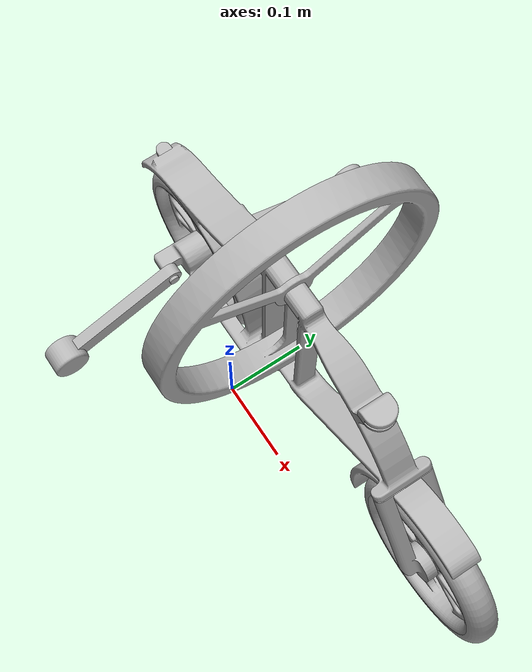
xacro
<?xml version="1.0" ?>
<robot name="inter_iit_sbb" xmlns:xacro="http://www.ros.org/wiki/xacro">

<xacro:include filename="$(find inter_iit_sbb_description)/xacro/materials.xacro" />
<xacro:include filename="$(find inter_iit_sbb_description)/urdf/inter_iit_sbb.trans" />
<xacro:include filename="$(find inter_iit_sbb_description)/urdf/inter_iit_sbb.gazebo" />

<link name="base_link">
  <inertial>
    <origin rpy="0 0 0" xyz="-0.06301495463172813 0.09167858470193327 0.04065767466634844"/>
    <mass value="2.5119624293725873"/>
    <inertia ixx="0.017685" ixy="-6.6e-05" ixz="-0.009075" iyy="0.062932" iyz="-3.2e-05" izz="0.047251"/>
  </inertial>
  <visual>
    <origin rpy="0 0 0" xyz="0 0 0"/>
    <geometry>
      <mesh filename="package://inter_iit_sbb_description/meshes/base_link.stl" scale="0.001 0.001 0.001"/>
    </geometry>
    <material name="silver"/>
  </visual>
  <collision>
    <origin rpy="0 0 0" xyz="0 0 0"/>
    <geometry>
      <mesh filename="package://inter_iit_sbb_description/meshes/base_link.stl" scale="0.001 0.001 0.001"/>
    </geometry>
  </collision>
</link>

<link name="Lidar_f_1">
  <inertial>
    <origin rpy="0 0 0" xyz="0.006298902233657533 -4.9679982069394946e-05 0.008645447646453502"/>
    <mass value="0.0292738467931227"/>
    <inertia ixx="4e-06" ixy="-0.0" ixz="-0.0" iyy="3e-06" iyz="-0.0" izz="6e-06"/>
  </inertial>
  <visual>
    <origin rpy="0 0 0" xyz="-0.151085 -0.09175 -0.158938"/>
    <geometry>
      <mesh filename="package://inter_iit_sbb_description/meshes/Lidar_f_1.stl" scale="0.001 0.001 0.001"/>
    </geometry>
    <material name="silver"/>
  </visual>
  <collision>
    <origin rpy="0 0 0" xyz="-0.151085 -0.09175 -0.158938"/>
    <geometry>
      <mesh filename="package://inter_iit_sbb_description/meshes/Lidar_f_1.stl" scale="0.001 0.001 0.001"/>
    </geometry>
  </collision>
</link>

<link name="GPS_1">
  <inertial>
    <origin rpy="0 0 0" xyz="-0.0009866122079694763 3.82499999465602e-07 -1.565954627913424e-07"/>
    <mass value="0.000508778057428475"/>
    <inertia ixx="0.0" ixy="-0.0" ixz="-0.0" iyy="0.0" iyz="-0.0" izz="0.0"/>
  </inertial>
  <visual>
    <origin rpy="0 0 0" xyz="-0.019157 -0.09178 -0.151686"/>
    <geometry>
      <mesh filename="package://inter_iit_sbb_description/meshes/GPS_1.stl" scale="0.001 0.001 0.001"/>
    </geometry>
    <material name="silver"/>
  </visual>
  <collision>
    <origin rpy="0 0 0" xyz="-0.019157 -0.09178 -0.151686"/>
    <geometry>
      <mesh filename="package://inter_iit_sbb_description/meshes/GPS_1.stl" scale="0.001 0.001 0.001"/>
    </geometry>
  </collision>
</link>

<link name="IMU_1">
  <inertial>
    <origin rpy="0 0 0" xyz="0.0009863522471559513 3.825000002288803e-07 -1.5659546181989725e-07"/>
    <mass value="0.0005087780574284744"/>
    <inertia ixx="0.0" ixy="-0.0" ixz="-0.0" iyy="0.0" iyz="0.0" izz="0.0"/>
  </inertial>
  <visual>
    <origin rpy="0 0 0" xyz="0.040843 -0.09178 -0.151686"/>
    <geometry>
      <mesh filename="package://inter_iit_sbb_description/meshes/IMU_1.stl" scale="0.001 0.001 0.001"/>
    </geometry>
    <material name="silver"/>
  </visual>
  <collision>
    <origin rpy="0 0 0" xyz="0.040843 -0.09178 -0.151686"/>
    <geometry>
      <mesh filename="package://inter_iit_sbb_description/meshes/IMU_1.stl" scale="0.001 0.001 0.001"/>
    </geometry>
  </collision>
</link>

<link name="Lidar_b_1">
  <inertial>
    <origin rpy="0 0 0" xyz="-0.006149239155118724 3.8249999959050207e-07 -4.44502591311971e-05"/>
    <mass value="0.003430435212284337"/>
    <inertia ixx="0.0" ixy="0.0" ixz="-0.0" iyy="0.0" iyz="-0.0" izz="0.0"/>
  </inertial>
  <visual>
    <origin rpy="0 0 0" xyz="0.291283 -0.09178 -0.059141"/>
    <geometry>
      <mesh filename="package://inter_iit_sbb_description/meshes/Lidar_b_1.stl" scale="0.001 0.001 0.001"/>
    </geometry>
    <material name="silver"/>
  </visual>
  <collision>
    <origin rpy="0 0 0" xyz="0.291283 -0.09178 -0.059141"/>
    <geometry>
      <mesh filename="package://inter_iit_sbb_description/meshes/Lidar_b_1.stl" scale="0.001 0.001 0.001"/>
    </geometry>
  </collision>
</link>

<link name="ft_1">
  <inertial>
    <origin rpy="0 0 0" xyz="2.441840158962094e-07 0.020000382499999914 2.534634050352369e-07"/>
    <mass value="0.41997225043001085"/>
    <inertia ixx="0.002545" ixy="-0.0" ixz="0.0" iyy="0.005003" iyz="0.0" izz="0.002545"/>
  </inertial>
  <visual>
    <origin rpy="0 0 0" xyz="-0.297135 -0.07178 0.054148"/>
    <geometry>
      <mesh filename="package://inter_iit_sbb_description/meshes/ft_1.stl" scale="0.001 0.001 0.001"/>
    </geometry>
    <material name="silver"/>
  </visual>
  <collision>
    <origin rpy="0 0 0" xyz="-0.297135 -0.07178 0.054148"/>
    <geometry>
      <mesh filename="package://inter_iit_sbb_description/meshes/ft_1.stl" scale="0.001 0.001 0.001"/>
    </geometry>
  </collision>
</link>

<link name="bt_1">
  <inertial>
    <origin rpy="0 0 0" xyz="1.8422326109046594e-07 0.020000382499999858 -1.565954626733812e-07"/>
    <mass value="0.4199722504300092"/>
    <inertia ixx="0.002545" ixy="0.0" ixz="-0.0" iyy="0.005003" iyz="-0.0" izz="0.002545"/>
  </inertial>
  <visual>
    <origin rpy="0 0 0" xyz="0.202754 -0.07178 0.054314"/>
    <geometry>
      <mesh filename="package://inter_iit_sbb_description/meshes/bt_1.stl" scale="0.001 0.001 0.001"/>
    </geometry>
    <material name="silver"/>
  </visual>
  <collision>
    <origin rpy="0 0 0" xyz="0.202754 -0.07178 0.054314"/>
    <geometry>
      <mesh filename="package://inter_iit_sbb_description/meshes/bt_1.stl" scale="0.001 0.001 0.001"/>
    </geometry>
  </collision>
</link>

<link name="flywheel_1">
  <inertial>
    <origin rpy="0 0 0" xyz="-0.004117206984191458 3.8249998035588817e-07 -1.5696800198528038e-07"/>
    <mass value="8.369345689603184"/>
    <inertia ixx="0.244646" ixy="-0.0" ixz="-0.0" iyy="0.123398" iyz="-0.0" izz="0.123398"/>
  </inertial>
  <visual>
    <origin rpy="0 0 0" xyz="0.006726 -0.09178 -0.175686"/>
    <geometry>
      <mesh filename="package://inter_iit_sbb_description/meshes/flywheel_1.stl" scale="0.001 0.001 0.001"/>
    </geometry>
    <material name="silver"/>
  </visual>
  <collision>
    <origin rpy="0 0 0" xyz="0.006726 -0.09178 -0.175686"/>
    <geometry>
      <mesh filename="package://inter_iit_sbb_description/meshes/flywheel_1.stl" scale="0.001 0.001 0.001"/>
    </geometry>
  </collision>
</link>

<link name="stand1_1">
  <inertial>
    <origin rpy="0 0 0" xyz="0.008000184223261125 0.12115768037505764 -0.04409780668612165"/>
    <mass value="0.3682798124552807"/>
    <inertia ixx="0.001466" ixy="0.0" ixz="-0.0" iyy="0.000225" iyz="0.000446" izz="0.001288"/>
  </inertial>
  <visual>
    <origin rpy="0 0 0" xyz="0.202754 -0.155026 0.054314"/>
    <geometry>
      <mesh filename="package://inter_iit_sbb_description/meshes/stand1_1.stl" scale="0.001 0.001 0.001"/>
    </geometry>
    <material name="silver"/>
  </visual>
  <collision>
    <origin rpy="0 0 0" xyz="0.202754 -0.155026 0.054314"/>
    <geometry>
      <mesh filename="package://inter_iit_sbb_description/meshes/stand1_1.stl" scale="0.001 0.001 0.001"/>
    </geometry>
  </collision>
</link>

<link name="stand2_1">
  <inertial>
    <origin rpy="0 0 0" xyz="0.008000184223261209 -0.1211569153750672 -0.04409780482345152"/>
    <mass value="0.36827981245528163"/>
    <inertia ixx="0.001466" ixy="0.0" ixz="-0.0" iyy="0.000225" iyz="-0.000446" izz="0.001288"/>
  </inertial>
  <visual>
    <origin rpy="0 0 0" xyz="0.202754 -0.027306 0.054314"/>
    <geometry>
      <mesh filename="package://inter_iit_sbb_description/meshes/stand2_1.stl" scale="0.001 0.001 0.001"/>
    </geometry>
    <material name="silver"/>
  </visual>
  <collision>
    <origin rpy="0 0 0" xyz="0.202754 -0.027306 0.054314"/>
    <geometry>
      <mesh filename="package://inter_iit_sbb_description/meshes/stand2_1.stl" scale="0.001 0.001 0.001"/>
    </geometry>
  </collision>
</link>

<link name="bw_1">
  <inertial>
    <origin rpy="0 0 0" xyz="1.8391281481067168e-07 0.0050003827774467435 -1.5442587548292197e-07"/>
    <mass value="0.8178108786047759"/>
    <inertia ixx="0.003155" ixy="-0.0" ixz="-0.0" iyy="0.006177" iyz="0.0" izz="0.003155"/>
  </inertial>
  <visual>
    <origin rpy="0 0 0" xyz="0.202754 -0.08678 0.054314"/>
    <geometry>
      <mesh filename="package://inter_iit_sbb_description/meshes/bw_1.stl" scale="0.001 0.001 0.001"/>
    </geometry>
    <material name="silver"/>
  </visual>
  <collision>
    <origin rpy="0 0 0" xyz="0.202754 -0.08678 0.054314"/>
    <geometry>
      <mesh filename="package://inter_iit_sbb_description/meshes/bw_1.stl" scale="0.001 0.001 0.001"/>
    </geometry>
  </collision>
</link>

<link name="fw_1">
  <inertial>
    <origin rpy="0 0 0" xyz="2.438735698939709e-07 -0.00499961722255321 2.5563299222569613e-07"/>
    <mass value="0.8178108786047762"/>
    <inertia ixx="0.003155" ixy="-0.0" ixz="-0.0" iyy="0.006177" iyz="0.0" izz="0.003155"/>
  </inertial>
  <visual>
    <origin rpy="0 0 0" xyz="-0.297135 -0.09678 0.054148"/>
    <geometry>
      <mesh filename="package://inter_iit_sbb_description/meshes/fw_1.stl" scale="0.001 0.001 0.001"/>
    </geometry>
    <material name="silver"/>
  </visual>
  <collision>
    <origin rpy="0 0 0" xyz="-0.297135 -0.09678 0.054148"/>
    <geometry>
      <mesh filename="package://inter_iit_sbb_description/meshes/fw_1.stl" scale="0.001 0.001 0.001"/>
    </geometry>
  </collision>
</link>

<link name="handle_1">
  <inertial>
    <origin rpy="0 0 0" xyz="0.03196901092566551 9.744838892933316e-06 -0.06215739437056638"/>
    <mass value="0.7601192858408754"/>
    <inertia ixx="0.002279" ixy="3e-06" ixz="6.8e-05" iyy="0.003776" iyz="2e-06" izz="0.002123"/>
  </inertial>
  <visual>
    <origin rpy="0 0 0" xyz="-0.219516 -0.09178 -0.062365"/>
    <geometry>
      <mesh filename="package://inter_iit_sbb_description/meshes/handle_1.stl" scale="0.001 0.001 0.001"/>
    </geometry>
    <material name="silver"/>
  </visual>
  <collision>
    <origin rpy="0 0 0" xyz="-0.219516 -0.09178 -0.062365"/>
    <geometry>
      <mesh filename="package://inter_iit_sbb_description/meshes/handle_1.stl" scale="0.001 0.001 0.001"/>
    </geometry>
  </collision>
</link>

<xacro:include filename="$(find inter_iit_sbb_description)/xacro/joint_motor.xacro"/>

  <xacro:joint_motor motor_name="handle" parent_link="base_link" child_link="handle_1">
    <xacro:property name="params_yaml" value="$(find inter_iit_sbb_description)/params/joint_motor.yaml"/>
    <origin rpy="0 0 0" xyz="0.219516 0.09178 0.062365"/>
    <axis xyz="0.5547 -0.0 -0.83205"/>
  </xacro:joint_motor>

  <xacro:joint_motor motor_name="drive_wheel" parent_link="base_link" child_link="bw_1">
    <xacro:property name="params_yaml" value="$(find inter_iit_sbb_description)/params/joint_motor.yaml"/>
    <origin rpy="0 0 0" xyz="-0.202754 0.08678 -0.054314"/>
    <axis xyz="-0.0 1.0 -0.0"/>
  </xacro:joint_motor>

  <xacro:joint_motor motor_name="stand2" parent_link="base_link" child_link="stand2_1">
    <xacro:property name="params_yaml" value="$(find inter_iit_sbb_description)/params/joint_motor.yaml"/>
    <origin rpy="0 0 0" xyz="-0.202754 0.027306 -0.054314"/>
    <axis xyz="-1.0 -0.0 0.0"/>
  </xacro:joint_motor>

  <xacro:joint_motor motor_name="stand1" parent_link="base_link" child_link="stand1_1">
    <xacro:property name="params_yaml" value="$(find inter_iit_sbb_description)/params/joint_motor.yaml"/>
    <origin rpy="0 0 0" xyz="-0.202754 0.155026 -0.054314"/>
    <axis xyz="-1.0 -0.0 0.0"/>
  </xacro:joint_motor>

  <xacro:joint_motor motor_name="flywheel" parent_link="base_link" child_link="flywheel_1">
    <xacro:property name="params_yaml" value="$(find inter_iit_sbb_description)/params/joint_motor.yaml"/>
    <origin rpy="0 0 0" xyz="-0.006726 0.09178 0.175686"/>
    <axis xyz="-1.0 0.0 0.0"/>
  </xacro:joint_motor>

  <!-- fixed joints -->

<joint name="Rigid23" type="fixed">
  <origin rpy="0 0 0" xyz="0.151085 0.09175 0.158938"/>
  <parent link="base_link"/>
  <child link="Lidar_f_1"/>
</joint>

<joint name="Rigid24" type="fixed">
  <origin rpy="0 0 0" xyz="0.019157 0.09178 0.151686"/>
  <parent link="base_link"/>
  <child link="GPS_1"/>
</joint>

<joint name="Rigid25" type="fixed">
  <origin rpy="0 0 0" xyz="-0.040843 0.09178 0.151686"/>
  <parent link="base_link"/>
  <child link="IMU_1"/>
</joint>

<joint name="Rigid26" type="fixed">
  <origin rpy="0 0 0" xyz="-0.291283 0.09178 0.059141"/>
  <parent link="base_link"/>
  <child link="Lidar_b_1"/>
</joint>

<joint name="Rigid27" type="fixed">
  <origin rpy="0 0 0" xyz="0.0 -0.025 0.0"/>
  <parent link="fw_1"/>
  <child link="ft_1"/>
</joint>

<joint name="Rigid28" type="fixed">
  <origin rpy="0 0 0" xyz="0.0 -0.015 0.0"/>
  <parent link="bw_1"/>
  <child link="bt_1"/>
</joint>

<joint name="Rev33" type="continuous">
  <origin rpy="0 0 0" xyz="0.077619 0.005 -0.116513"/>
  <parent link="handle_1"/>
  <child link="fw_1"/>
  <axis xyz="0.0 -1.0 0.0"/>
</joint>

</robot>

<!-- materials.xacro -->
<robot name="inter_iit_sbb" xmlns:xacro="http://www.ros.org/wiki/xacro" >

<material name="silver">
  <color rgba="0.700 0.700 0.700 1.000"/>
</material>

</robot>

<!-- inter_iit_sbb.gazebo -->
<robot name="inter_iit_sbb" xmlns:xacro="http://www.ros.org/wiki/xacro" >

<xacro:property name="body_color" value="Gazebo/Blue" />

<gazebo>
  <plugin filename="libgazebo_ros_control.so" name="control"/>
</gazebo>

<!-- laser plugin -->

<gazebo reference="Lidar_f_1">
    <sensor type="ray" name="head_hokuyo_sensor">
      <pose>0 0 0 0 0 0</pose>
      <visualize>false</visualize>
      <update_rate>11</update_rate>
      <ray>
        <scan>
          <horizontal>
            <samples>5</samples>
            <resolution>1</resolution>
            <min_angle>-1.570796</min_angle>
            <max_angle>1.570796</max_angle>
          </horizontal>
        </scan>
        <range>
          <min>0.10</min>
          <max>30.0</max>
          <resolution>0.01</resolution>
        </range>
        <noise>
          <type>gaussian</type>
          <mean>0.0</mean>
          <stddev>0.0</stddev>
        </noise>
      </ray>
      <plugin name="gazebo_ros_head_hokuyo_controller" filename="libgazebo_ros_laser.so">
        <topicName>/sbb/distance_sensor/front</topicName>
        <frameName>Lidar_f_1</frameName>
      </plugin>
    </sensor>
  </gazebo>

  <!-- IMU plugin -->

  <gazebo reference="IMU_1">
    <gravity>true</gravity>
    <sensor name="imu_sensor" type="imu">
      <always_on>true</always_on>
      <update_rate>100</update_rate>
      <visualize>false</visualize>
      <topic>__default_topic__</topic>
      <plugin filename="libgazebo_ros_imu_sensor.so" name="imu_plugin">
        <topicName>sbb/imu</topicName>
        <bodyName>IMU_1</bodyName>
        <updateRateHZ>10.0</updateRateHZ>
        <gaussianNoise>0.0</gaussianNoise>
        <xyzOffset>0 0 0</xyzOffset>
        <rpyOffset>0 0 0</rpyOffset>
        <frameName>imu_link</frameName>
        <initialOrientationAsReference>false</initialOrientationAsReference>
      </plugin>
      <pose>0 0 0 0 0 0</pose>
    </sensor>
  </gazebo>

<!-- GPS plugin -->

<gazebo>
    <plugin name="gps_controller" filename="libhector_gazebo_ros_gps.so">
      <updateRate>40</updateRate>
      <robotNamespace>sbb</robotNamespace>
      <frameName>GPS_1</frameName>
      <bodyName>GPS_1</bodyName>
      <topicName>gps</topicName>
      <velocityTopicName>gps/vel</velocityTopicName>
      <referenceLatitude>10</referenceLatitude>
      <referenceLongitude>10</referenceLongitude>
      <referenceHeading>0</referenceHeading>
      <referenceAltitude>0</referenceAltitude>
    </plugin>
  </gazebo>

<gazebo reference="base_link">
  <material>${body_color}</material>
  <mu1>0.2</mu1>
  <mu2>0.2</mu2>
  <selfCollide>true</selfCollide>
  <gravity>true</gravity>
</gazebo>

<gazebo reference="Lidar_f_1">
  <material>Gazebo/Black</material>
  <mu1>0.2</mu1>
  <mu2>0.2</mu2>
  <selfCollide>true</selfCollide>
</gazebo>

<gazebo reference="GPS_1">
  <material>Gazebo/Red</material>
  <mu1>0.2</mu1>
  <mu2>0.2</mu2>
  <selfCollide>true</selfCollide>
</gazebo>

<gazebo reference="IMU_1">
  <material>Gazebo/Red</material>
  <mu1>0.2</mu1>
  <mu2>0.2</mu2>
  <selfCollide>true</selfCollide>
</gazebo>

<gazebo reference="Lidar_b_1">
  <material>Gazebo/Black</material>
  <mu1>0.2</mu1>
  <mu2>0.2</mu2>
  <selfCollide>true</selfCollide>
</gazebo>

<gazebo reference="ft_1">
  <material>Gazebo/Black</material>
  <mu1>1.2</mu1>
  <mu2>1.2</mu2>
  <selfCollide>true</selfCollide>
</gazebo>

<gazebo reference="bt_1">
  <material>Gazebo/Black</material>
  <mu1>2.2</mu1>
  <mu2>2.2</mu2>
  <selfCollide>true</selfCollide>
</gazebo>

<gazebo reference="flywheel_1">
  <material>Gazebo/Chrome</material>
  <mu1>0.2</mu1>
  <mu2>0.2</mu2>
  <selfCollide>true</selfCollide>
</gazebo>

<gazebo reference="stand1_1">
  <material>Gazebo/Red</material>
  <mu1>2.2</mu1>
  <mu2>2.2</mu2>
  <selfCollide>true</selfCollide>
</gazebo>

<gazebo reference="stand2_1">
  <material>Gazebo/Red</material>
  <mu1>2.2</mu1>
  <mu2>2.2</mu2>
  <selfCollide>true</selfCollide>
</gazebo>

<gazebo reference="bw_1">
  <material>Gazebo/Chrome</material>
  <mu1>0.2</mu1>
  <mu2>0.2</mu2>
  <selfCollide>true</selfCollide>
</gazebo>

<gazebo reference="fw_1">
  <material>Gazebo/Chrome</material>
  <mu1>0.2</mu1>
  <mu2>0.2</mu2>
  <selfCollide>true</selfCollide>
</gazebo>

<gazebo reference="handle_1">
  <material>${body_color}</material>
  <mu1>0.2</mu1>
  <mu2>0.2</mu2>
  <selfCollide>true</selfCollide>
</gazebo>

</robot>

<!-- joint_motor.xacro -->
<robot xmlns:xacro="http://www.ros.org/wiki/xacro">

<xacro:macro name="joint_motor" params="motor_name parent_link child_link *origin *axis">
  <xacro:property name="params_yaml"  value="$(find inter_iit_sbb_description)/params/joint_motor.yaml"/>
  <xacro:property name="motor_param" value="${load_yaml(params_yaml)}"/>

  <joint name="${motor_name}" type="continuous">
      <parent link="${parent_link}"/>
      <child link="${child_link}"/>
      <xacro:insert_block name="origin"/>
      <xacro:insert_block name="axis"/>
      <dynamics damping="${motor_param['joint_damping']}" friction="${motor_param['joint_friction']}"/>
  </joint>
  <gazebo>
    <plugin name="motor_plugin" filename="libgazebo_ros_joint_motor.so">
      <motor_shaft_joint>${motor_name}</motor_shaft_joint>
      <motor_wrench_frame>${child_link}</motor_wrench_frame>
      <ode_joint_motor_fmax>${motor_param['ode_joint_motor_fmax']}</ode_joint_motor_fmax>
      <ode_joint_fudge_factor>${motor_param['ode_joint_fudge_factor']}</ode_joint_fudge_factor>
      <command_topic>${motor_name}/command</command_topic>
      <velocity_topic>${motor_name}/velocity</velocity_topic>
      <encoder_topic>${motor_name}/encoder</encoder_topic>
      <publish_velocity>${motor_param['publish_velocity']}</publish_velocity>
      <publish_encoder>${motor_param['publish_encoder']}</publish_encoder>
      <publish_motor_joint_state>${motor_param['publish_motor_joint_state']}</publish_motor_joint_state>
      <update_rate>${motor_param['update_rate']}</update_rate>
      <encoder_ppr>${motor_param['encoder_ppr']}</encoder_ppr>
      <encoder_to_shaft_ratio>${motor_param['encoder_to_shaft_ratio']}</encoder_to_shaft_ratio>
      <rosDebugLevel>Debug</rosDebugLevel>
    </plugin>
  </gazebo>

</xacro:macro>

</robot>
